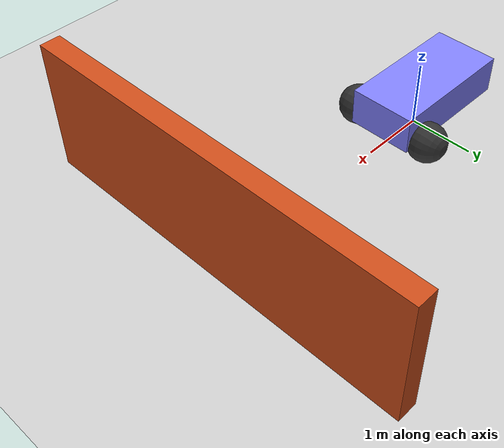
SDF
<?xml version='1.0' encoding='utf-8'?>
<sdf version="1.8">
  <world name="demo">
    <light name="sun" type="directional">
      <cast_shadows>true</cast_shadows>
      <pose>0 0 10 0 0 0</pose>
      <diffuse>0.8 0.8 0.8 1</diffuse>
      <specular>0.2 0.2 0.2 1</specular>
      <attenuation>
        <range>1000</range>
        <constant>0.9</constant>
        <linear>0.01</linear>
        <quadratic>0.001</quadratic>
      </attenuation>
      <direction>-0.5 0.1 -0.9</direction>
    </light>
    <model name="ground_plane">
      <static>true</static>
      <link name="link">
        <collision name="collision">
          <geometry>
            <plane>
              <normal>0 0 1</normal>
              <size>100 100</size>
            </plane>
          </geometry>
        </collision>
        <visual name="visual">
          <geometry>
            <plane>
              <normal>0 0 1</normal>
              <size>100 100</size>
            </plane>
          </geometry>
          <material>
            <ambient>0.8 0.8 0.8 1</ambient>
            <diffuse>0.8 0.8 0.8 1</diffuse>
            <specular>0.8 0.8 0.8 1</specular>
          </material>
        </visual>
      </link>
    </model>
    <model name="vehicle">
      <pose>0 0 0.325 0 0 0</pose>
      <link name="chassis">
        <pose>-0.151427 -0 0.175 0 -0 0</pose>
        <inertial>
          <mass>1.14395</mass>
          <inertia>
            <ixx>0.126164</ixx>
            <ixy>0</ixy>
            <ixz>0</ixz>
            <iyy>0.416519</iyy>
            <iyz>0</iyz>
            <izz>0.481014</izz>
          </inertia>
        </inertial>
        <visual name="visual_chassis">
          <geometry>
            <box>
              <size>2.01142 1 0.568726</size>
            </box>
          </geometry>
          <material>
            <ambient>0.5 0.5 1.0 1</ambient>
            <diffuse>0.5 0.5 1.0 1</diffuse>
            <specular>0.0 0.0 1.0 1</specular>
          </material>
        </visual>
        <collision name="collision_chassis">
          <geometry>
            <box>
              <size>2.01142 1 0.568726</size>
            </box>
          </geometry>
        </collision>
        <sensor name="lidar_2d" type="gpu_lidar">
          <pose>0 0 0.4 0 0 0</pose>
          <topic>/scan</topic>
          <gz_frame_id>vehicle/lidar</gz_frame_id>
          <always_on>true</always_on>
          <update_rate>10</update_rate>
          <visualize>true</visualize>
          <ray>
            <scan>
              <horizontal>
                <samples>360</samples>
                <resolution>1</resolution>
                <min_angle>-3.141592653589793</min_angle>
                <max_angle>3.141592653589793</max_angle>
              </horizontal>
              <vertical>
                <samples>1</samples>
                <resolution>1</resolution>
                <min_angle>0</min_angle>
                <max_angle>0</max_angle>
              </vertical>
            </scan>
            <range>
              <min>0.1</min>
              <max>12.0</max>
              <resolution>0.01</resolution>
            </range>
          </ray>
        </sensor>
      </link>
      <link name="left_wheel">
        <pose>0.554283 0.625029 -0.025 -1.5707 0 0</pose>
        <inertial>
          <mass>2</mass>
          <inertia>
            <ixx>0.145833</ixx>
            <ixy>0</ixy>
            <ixz>0</ixz>
            <iyy>0.145833</iyy>
            <iyz>0</iyz>
            <izz>0.125</izz>
          </inertia>
        </inertial>
        <visual name="visual_left_wheel">
          <geometry>
            <sphere>
              <radius>0.3</radius>
            </sphere>
          </geometry>
          <material>
            <ambient>0.2 0.2 0.2 1</ambient>
            <diffuse>0.2 0.2 0.2 1</diffuse>
            <specular>0.2 0.2 0.2 1</specular>
          </material>
        </visual>
        <collision name="collision_left_wheel">
          <geometry>
            <sphere>
              <radius>0.3</radius>
            </sphere>
          </geometry>
        </collision>
      </link>
      <link name="right_wheel">
        <pose>0.554282 -0.625029 -0.025 -1.5707 0 0</pose>
        <inertial>
          <mass>2</mass>
          <inertia>
            <ixx>0.145833</ixx>
            <ixy>0</ixy>
            <ixz>0</ixz>
            <iyy>0.145833</iyy>
            <iyz>0</iyz>
            <izz>0.125</izz>
          </inertia>
        </inertial>
        <visual name="visual_right_wheel">
          <geometry>
            <sphere>
              <radius>0.3</radius>
            </sphere>
          </geometry>
          <material>
            <ambient>0.2 0.2 0.2 1</ambient>
            <diffuse>0.2 0.2 0.2 1</diffuse>
            <specular>0.2 0.2 0.2 1</specular>
          </material>
        </visual>
        <collision name="collision_right_wheel">
          <geometry>
            <sphere>
              <radius>0.3</radius>
            </sphere>
          </geometry>
        </collision>
      </link>
      <link name="caster">
        <pose>-0.957138 -0 -0.125 0 -0 0</pose>
        <inertial>
          <mass>1</mass>
          <inertia>
            <ixx>0.1</ixx>
            <ixy>0</ixy>
            <ixz>0</ixz>
            <iyy>0.1</iyy>
            <iyz>0</iyz>
            <izz>0.1</izz>
          </inertia>
        </inertial>
        <visual name="visual_caster">
          <geometry>
            <sphere>
              <radius>0.2</radius>
            </sphere>
          </geometry>
          <material>
            <ambient>0.2 0.2 0.2 1</ambient>
            <diffuse>0.2 0.2 0.2 1</diffuse>
            <specular>0.2 0.2 0.2 1</specular>
          </material>
        </visual>
        <collision name="collision_caster">
          <geometry>
            <sphere>
              <radius>0.2</radius>
            </sphere>
          </geometry>
        </collision>
      </link>
      <joint name="left_wheel_joint" type="revolute">
        <parent>chassis</parent>
        <child>left_wheel</child>
        <axis>
          <xyz>0 0 1</xyz>
          <limit>
            <lower>-1.79769e+308</lower>
            <upper>1.79769e+308</upper>
          </limit>
        </axis>
      </joint>
      <joint name="right_wheel_joint" type="revolute">
        <parent>chassis</parent>
        <child>right_wheel</child>
        <axis>
          <xyz>0 0 1</xyz>
          <limit>
            <lower>-1.79769e+308</lower>
            <upper>1.79769e+308</upper>
          </limit>
        </axis>
      </joint>
      <joint name="caster_wheel" type="ball">
        <parent>chassis</parent>
        <child>caster</child>
      </joint>
      <plugin filename="gz-sim-diff-drive-system" name="gz::sim::systems::DiffDrive">
        <left_joint>left_wheel_joint</left_joint>
        <right_joint>right_wheel_joint</right_joint>
        <wheel_separation>1.25</wheel_separation>
        <wheel_radius>0.3</wheel_radius>
        <odom_publish_frequency>30</odom_publish_frequency>
        <frame_id>vehicle/odom</frame_id>
        <child_frame_id>vehicle/chassis</child_frame_id>
        <tf_topic>/model/vehicle/tf</tf_topic>
      </plugin>
      <plugin filename="gz-sim-joint-state-publisher-system" name="gz::sim::systems::JointStatePublisher" />
    </model>
    <plugin filename="gz-sim-physics-system" name="gz::sim::systems::Physics" />
    <plugin filename="gz-sim-user-commands-system" name="gz::sim::systems::UserCommands" />
    <plugin filename="gz-sim-scene-broadcaster-system" name="gz::sim::systems::SceneBroadcaster" />
    <plugin filename="gz-sim-sensors-system" name="gz::sim::systems::Sensors">
      <render_engine>ogre2</render_engine>
    </plugin>
    <model name="lidar_test_wall">
      <static>true</static>
      <pose>4 0 1 0 0 0</pose>
      <link name="wall">
        <visual name="visual">
          <geometry>
            <box>
              <size>0.3 6 2</size>
            </box>
          </geometry>
          <material>
            <ambient>0.8 0.3 0.1 1</ambient>
            <diffuse>0.8 0.3 0.1 1</diffuse>
          </material>
        </visual>
        <collision name="collision">
          <geometry>
            <box>
              <size>0.3 6 2</size>
            </box>
          </geometry>
        </collision>
      </link>
    </model>
  </world>
</sdf>
